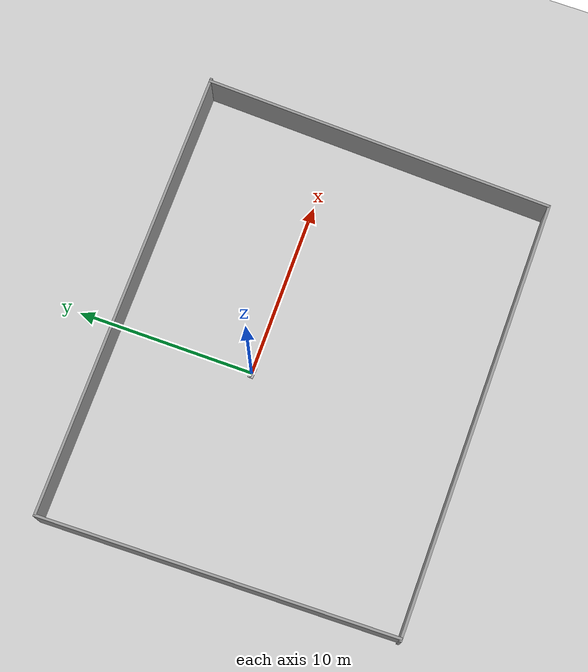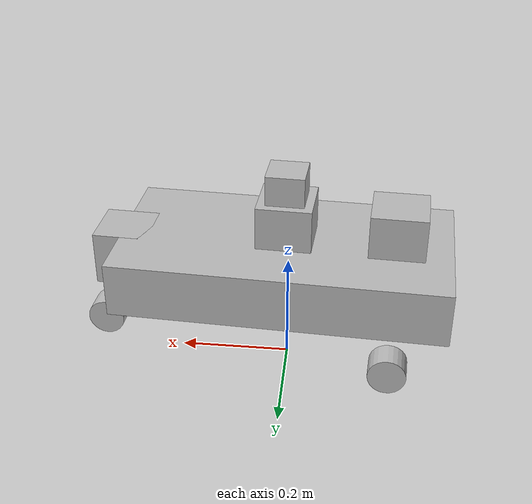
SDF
<sdf version="1.6">
 <world name="default">
  <light name="sun" type="directional">
   <pose>0 0 10 0 -0 0</pose>
   <diffuse>0.8 0.8 0.8 1</diffuse>
   <specular>0.2 0.2 0.2 1</specular>
   <attenuation>
    <range>1000</range>
    <constant>0.9</constant>
    <linear>0.01</linear>
    <quadratic>0.001</quadratic>
   </attenuation>
   <direction>-0.5 0.1 -0.9</direction>
  </light>
  <model name="ground_plane">
   <static>1</static>
   <link name="link">
    <collision name="collision">
     <geometry><plane><normal>0 0 1</normal><size>100 100</size></plane></geometry>
     <surface>
      <contact><collide_bitmask>65535</collide_bitmask></contact>
      <friction><ode><mu>100</mu><mu2>50</mu2></ode></friction>
     </surface>
    </collision>
    <visual name="visual">
     <cast_shadows>0</cast_shadows>
     <geometry><plane><normal>0 0 1</normal><size>100 100</size></plane></geometry>
     <material>
      <script><uri>file://media/materials/scripts/gazebo.material</uri><name>Gazebo/Grey</name></script>
     </material>
    </visual>
   </link>
  </model>
  <gravity>0 0 -9.8</gravity>
  <magnetic_field>6e-06 2.3e-05 -4.2e-05</magnetic_field>
  <atmosphere type="adiabatic"/>
  <physics name="default_physics" default="0" type="ode">
   <max_step_size>0.001</max_step_size>
   <real_time_factor>1</real_time_factor>
   <real_time_update_rate>1000</real_time_update_rate>
  </physics>
  <scene><ambient>0.4 0.4 0.4 1</ambient><background>0.7 0.7 0.7 1</background><shadows>1</shadows></scene>
  <audio><device>default</device></audio>
  <spherical_coordinates>
   <surface_model>EARTH_WGS84</surface_model>
   <latitude_deg>0</latitude_deg>
   <longitude_deg>0</longitude_deg>
   <elevation>0</elevation>
   <heading_deg>0</heading_deg>
  </spherical_coordinates>
  <model name="custom_bot">
   <link name="base_footprint">
    <inertial>
     <pose>-2e-06 0 3e-06 0 -0 0</pose>
     <mass>1.00003</mass>
     <inertia>
      <ixx>0.0150034</ixx>
      <ixy>0</ixy>
      <ixz>1.59994e-07</ixz>
      <iyy>0.0375038</iyy>
      <iyz>0</iyz>
      <izz>0.0375034</izz>
     </inertia>
    </inertial>
    <collision name="base_footprint_collision">
     <geometry><box><size>0.6 0.3 0.1</size></box></geometry>
    </collision>
    <collision name="base_footprint_fixed_joint_lump__camera_link_collision_1">
     <pose>0 0 0.15 0 -0 0</pose>
     <geometry><box><size>0.07 0.07 0.07</size></box></geometry>
    </collision>
    <collision name="base_footprint_fixed_joint_lump__imu_link_collision_2">
     <pose>-0.2 0 0.08 0 -0 0</pose>
     <geometry><box><size>0.1 0.1 0.1</size></box></geometry>
    </collision>
    <collision name="base_footprint_fixed_joint_lump__laser_scanner_collision_3">
     <pose>0 0 0.08 0 -0 0</pose>
     <geometry><box><size>0.1 0.1 0.1</size></box></geometry>
    </collision>
    <visual name="base_footprint_visual"><geometry><box><size>0.6 0.3 0.1</size></box></geometry></visual>
    <visual name="base_footprint_fixed_joint_lump__camera_link_visual_1">
     <pose>0 0 0.15 0 -0 0</pose>
     <geometry><box><size>0.07 0.07 0.07</size></box></geometry>
     <material><script><uri>__default__</uri><name>__default__</name></script></material>
    </visual>
    <visual name="base_footprint_fixed_joint_lump__imu_link_visual_2">
     <pose>-0.2 0 0.08 0 -0 0</pose>
     <geometry><box><size>0.1 0.1 0.1</size></box></geometry>
     <material><script><uri>__default__</uri><name>__default__</name></script></material>
    </visual>
    <visual name="base_footprint_fixed_joint_lump__laser_scanner_visual_3">
     <pose>0 0 0.08 0 -0 0</pose>
     <geometry><box><size>0.1 0.1 0.1</size></box></geometry>
     <material><script><uri>__default__</uri><name>__default__</name></script></material>
    </visual>
    <sensor name="camera1" type="camera">
     <update_rate>30</update_rate>
     <camera name="head">
      <horizontal_fov>1.39626</horizontal_fov>
      <image><width>800</width><height>800</height><format>R8G8B8</format></image>
      <clip><near>0.02</near><far>300</far></clip>
      <noise><type>gaussian</type><mean>0</mean><stddev>0.007</stddev></noise>
     </camera>
     <plugin name="camera_controller" filename="libgazebo_ros_camera.so">
      <alwaysOn>1</alwaysOn>
      <updateRate>0.0</updateRate>
      <cameraName>rrbot/camera1</cameraName>
      <imageTopicName>image_raw</imageTopicName>
      <cameraInfoTopicName>camera_info</cameraInfoTopicName>
      <frameName>camera_link</frameName>
      <hackBaseline>0.07</hackBaseline>
      <distortionK1>0.0</distortionK1>
      <distortionK2>0.0</distortionK2>
      <distortionK3>0.0</distortionK3>
      <distortionT1>0.0</distortionT1>
      <distortionT2>0.0</distortionT2>
      <robotNamespace>/</robotNamespace>
     </plugin>
     <pose>0 0 0.15 0 -0 0</pose>
    </sensor>
    <sensor name="imu_sensor" type="imu">
     <always_on>1</always_on>
     <update_rate>100</update_rate>
     <visualize>1</visualize>
     <topic>__default_topic__</topic>
     <plugin name="imu_plugin" filename="libgazebo_ros_imu_sensor.so">
      <topicName>imu</topicName>
      <bodyName>imu_link</bodyName>
      <updateRateHZ>10.0</updateRateHZ>
      <gaussianNoise>0.0</gaussianNoise>
      <xyzOffset>0.5 0 0</xyzOffset>
      <rpyOffset>0 0 0</rpyOffset>
      <frameName>imu_link</frameName>
      <initialOrientationAsReference>0</initialOrientationAsReference>
      <robotNamespace>/</robotNamespace>
     </plugin>
     <pose>-0.2 0 0.08 0 -0 0</pose>
    </sensor>
    <sensor name="laser" type="gpu_ray">
     <visualize>1</visualize>
     <update_rate>40</update_rate>
     <ray>
      <scan>
       <horizontal>
        <resolution>1</resolution>
        <min_angle>-1.578</min_angle>
        <max_angle>1.578</max_angle>
        <samples>640</samples>
       </horizontal>
      </scan>
      <range><min>0.1</min><max>30</max><resolution>0.1</resolution></range>
     </ray>
     <plugin name="gpu_laser" filename="libgazebo_ros_gpu_laser.so">
      <topicName>/scan</topicName>
      <frameName>laser_scanner</frameName>
      <robotNamespace>/</robotNamespace>
     </plugin>
     <pose>0 0 0.08 0 -0 0</pose>
    </sensor>
   </link>
   <link name="front_caster_wheel">
    <pose>0.3 0 0 0 -0 0</pose>
    <inertial>
     <mass>1</mass>
     <inertia><ixx>0.00083</ixx><ixy>0</ixy><ixz>0</ixz><iyy>0.00083</iyy><iyz>0</iyz><izz>0.000167</izz></inertia>
    </inertial>
    <collision name="front_caster_wheel_collision">
     <geometry><box><size>0.1 0.1 0.1</size></box></geometry>
    </collision>
    <visual name="front_caster_wheel_visual"><geometry><box><size>0.1 0.1 0.1</size></box></geometry></visual>
   </link>
   <joint name="front_caster_of_wheel_joint" type="revolute">
    <child>front_caster_wheel</child>
    <parent>base_footprint</parent>
    <axis>
     <xyz>0 0 1</xyz>
     <limit><lower>-1e+16</lower><upper>1e+16</upper></limit>
     <dynamics><spring_reference>0</spring_reference><spring_stiffness>0</spring_stiffness></dynamics>
     <use_parent_model_frame>1</use_parent_model_frame>
    </axis>
   </joint>
   <link name="front_wheel">
    <pose>0.35 0 -0.15 -1.5708 0 0</pose>
    <inertial>
     <mass>1</mass>
     <inertia>
      <ixx>5.1458e-05</ixx>
      <ixy>0</ixy>
      <ixz>0</ixz>
      <iyy>5.1458e-05</iyy>
      <iyz>0</iyz>
      <izz>6.125e-05</izz>
     </inertia>
    </inertial>
    <collision name="front_wheel_collision">
     <geometry><cylinder><length>0.05</length><radius>0.035</radius></cylinder></geometry>
    </collision>
    <visual name="front_wheel_visual">
     <geometry><cylinder><length>0.05</length><radius>0.035</radius></cylinder></geometry>
    </visual>
   </link>
   <joint name="front_wheel_joint" type="revolute">
    <child>front_wheel</child>
    <parent>front_caster_wheel</parent>
    <axis>
     <xyz>0 1 -4e-06</xyz>
     <limit><lower>-1e+16</lower><upper>1e+16</upper></limit>
     <dynamics><spring_reference>0</spring_reference><spring_stiffness>0</spring_stiffness></dynamics>
     <use_parent_model_frame>1</use_parent_model_frame>
    </axis>
   </joint>
   <link name="left_wheel">
    <pose>-0.2 0.1 -0.15 -1.5708 0 0</pose>
    <inertial>
     <mass>1</mass>
     <inertia>
      <ixx>5.1458e-05</ixx>
      <ixy>0</ixy>
      <ixz>0</ixz>
      <iyy>5.1458e-05</iyy>
      <iyz>0</iyz>
      <izz>6.125e-05</izz>
     </inertia>
    </inertial>
    <collision name="left_wheel_collision">
     <geometry><cylinder><length>0.05</length><radius>0.035</radius></cylinder></geometry>
    </collision>
    <visual name="left_wheel_visual">
     <geometry><cylinder><length>0.05</length><radius>0.035</radius></cylinder></geometry>
    </visual>
   </link>
   <joint name="left_wheel_joint" type="revolute">
    <child>left_wheel</child>
    <parent>base_footprint</parent>
    <axis>
     <xyz>0 1 -4e-06</xyz>
     <limit><lower>-1e+16</lower><upper>1e+16</upper></limit>
     <dynamics><spring_reference>0</spring_reference><spring_stiffness>0</spring_stiffness></dynamics>
     <use_parent_model_frame>1</use_parent_model_frame>
    </axis>
   </joint>
   <link name="right_wheel">
    <pose>-0.2 -0.1 -0.15 -1.5708 0 0</pose>
    <inertial>
     <mass>1</mass>
     <inertia>
      <ixx>5.1458e-05</ixx>
      <ixy>0</ixy>
      <ixz>0</ixz>
      <iyy>5.1458e-05</iyy>
      <iyz>0</iyz>
      <izz>6.125e-05</izz>
     </inertia>
    </inertial>
    <collision name="right_wheel_collision">
     <geometry><cylinder><length>0.05</length><radius>0.035</radius></cylinder></geometry>
    </collision>
    <visual name="right_wheel_visual">
     <geometry><cylinder><length>0.05</length><radius>0.035</radius></cylinder></geometry>
    </visual>
   </link>
   <joint name="right_wheel_joint" type="revolute">
    <child>right_wheel</child>
    <parent>base_footprint</parent>
    <axis>
     <xyz>0 1 -4e-06</xyz>
     <limit><lower>-1e+16</lower><upper>1e+16</upper></limit>
     <dynamics><spring_reference>0</spring_reference><spring_stiffness>0</spring_stiffness></dynamics>
     <use_parent_model_frame>1</use_parent_model_frame>
    </axis>
   </joint>
   <plugin name="differential_drive_controller" filename="libgazebo_ros_diff_drive.so">
    <leftJoint>left_wheel_joint</leftJoint>
    <rightJoint>right_wheel_joint</rightJoint>
    <robotBaseFrame>base_footprint</robotBaseFrame>
    <wheelSeparation>0.25</wheelSeparation>
    <wheelDiameter>0.07</wheelDiameter>
    <publishWheelJoinState>1</publishWheelJoinState>
    <robotNamespace>/</robotNamespace>
   </plugin>
   <static>0</static>
   <plugin name="joint_state_publisher" filename="libgazebo_ros_joint_state_publisher.so">
    <jointName>front_caster_of_wheel_joint, front_wheel_joint, left_wheel_joint, right_wheel_joint</jointName>
    <robotNamespace>/</robotNamespace>
   </plugin>
   <pose>0.005548 -0.02542 0.184997 7e-06 2e-05 -0.059233</pose>
  </model>
  <model name="basic.world">
   <pose>1.52183 -2.25614 0 0 -0 0</pose>
   <link name="Wall_1">
    <collision name="Wall_1_Collision">
     <geometry><box><size>24.7181 0.15 2.5</size></box></geometry>
     <pose>0 0 1.25 0 -0 0</pose>
    </collision>
    <visual name="Wall_1_Visual">
     <pose>0 0 1.25 0 -0 0</pose>
     <geometry><box><size>24.7181 0.15 2.5</size></box></geometry>
     <material>
      <script><uri>file://media/materials/scripts/gazebo.material</uri><name>Gazebo/Grey</name></script>
      <ambient>1 1 1 1</ambient>
     </material>
     <meta><layer>0</layer></meta>
    </visual>
    <pose>-0.201138 -9.89387 0 0 -0 -0.003809</pose>
   </link>
   <link name="Wall_2">
    <collision name="Wall_2_Collision">
     <geometry><box><size>19.9494 0.15 2.5</size></box></geometry>
     <pose>0 0 1.25 0 -0 0</pose>
    </collision>
    <visual name="Wall_2_Visual">
     <pose>0 0 1.25 0 -0 0</pose>
     <geometry><box><size>19.9494 0.15 2.5</size></box></geometry>
     <material>
      <script><uri>file://media/materials/scripts/gazebo.material</uri><name>Gazebo/Grey</name></script>
      <ambient>1 1 1 1</ambient>
     </material>
     <meta><layer>0</layer></meta>
    </visual>
    <pose>12.4103 -0.04639 0 0 -0 1.53771</pose>
   </link>
   <link name="Wall_3">
    <collision name="Wall_3_Collision">
     <geometry><box><size>25.7181 0.15 2.5</size></box></geometry>
     <pose>0 0 1.25 0 -0 0</pose>
    </collision>
    <visual name="Wall_3_Visual">
     <pose>0 0 1.25 0 -0 0</pose>
     <geometry><box><size>25.7181 0.15 2.5</size></box></geometry>
     <material>
      <script><uri>file://media/materials/scripts/gazebo.material</uri><name>Gazebo/Grey</name></script>
      <ambient>1 1 1 1</ambient>
     </material>
     <meta><layer>0</layer></meta>
    </visual>
    <pose>0.047472 9.89467 0 0 -0 3.13793</pose>
   </link>
   <link name="Wall_4">
    <collision name="Wall_4_Collision">
     <geometry><box><size>19.9434 0.15 2.5</size></box></geometry>
     <pose>0 0 1.25 0 -0 0</pose>
    </collision>
    <visual name="Wall_4_Visual">
     <pose>0 0 1.25 0 -0 0</pose>
     <geometry><box><size>19.9434 0.15 2.5</size></box></geometry>
     <material>
      <script><uri>file://media/materials/scripts/gazebo.material</uri><name>Gazebo/Grey</name></script>
      <ambient>1 1 1 1</ambient>
     </material>
     <meta><layer>0</layer></meta>
    </visual>
    <pose>-12.6108 0.047187 0 0 -0 -1.54864</pose>
   </link>
   <static>1</static>
  </model>
 </world>
</sdf>
